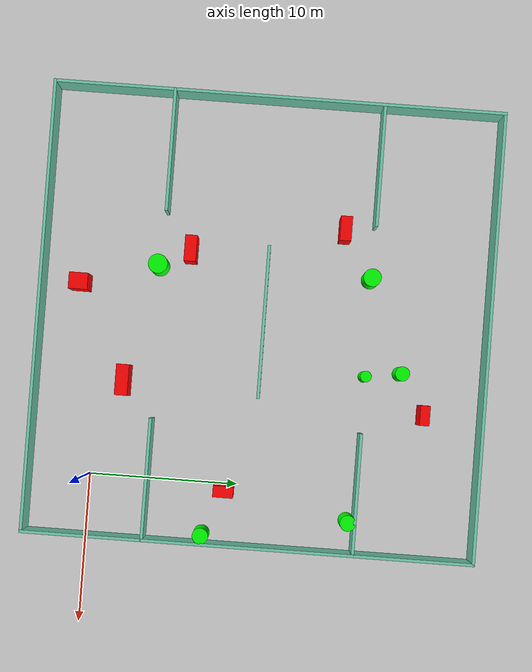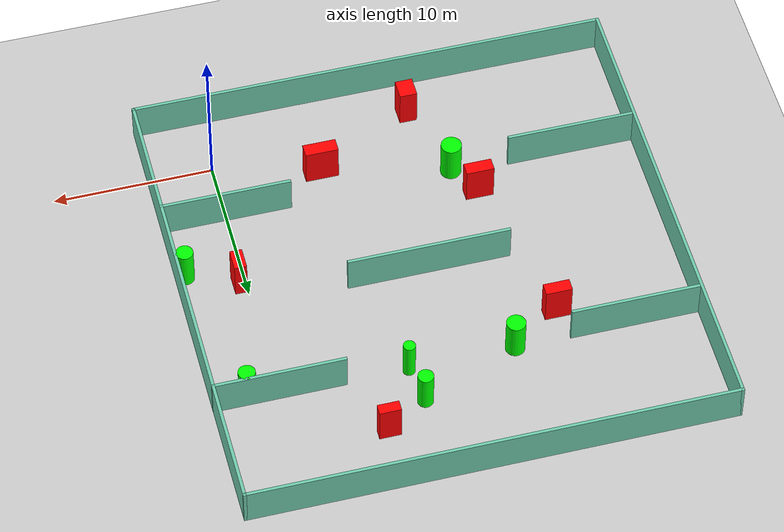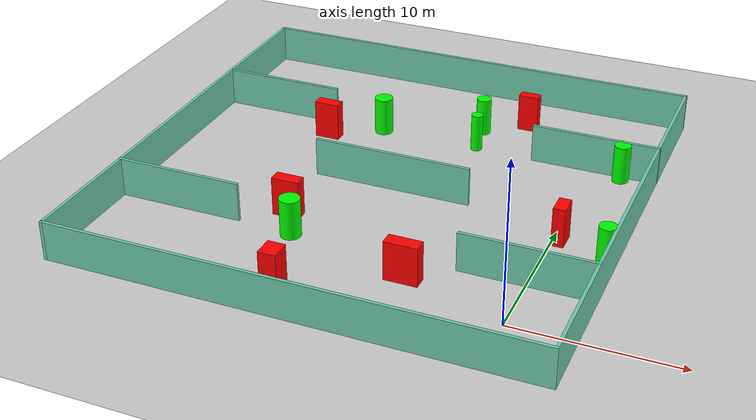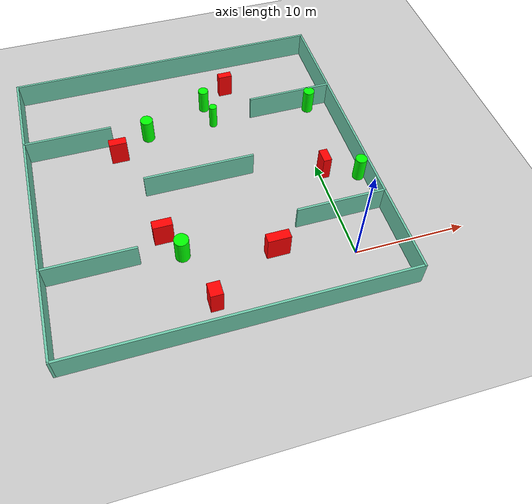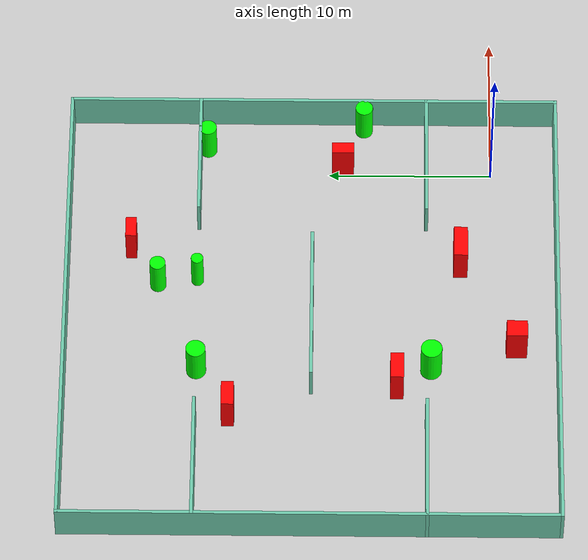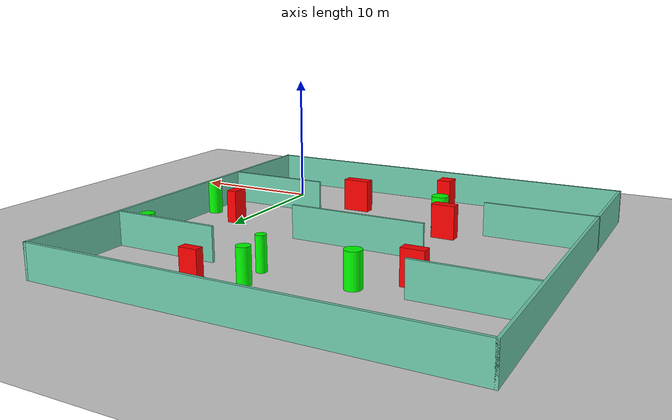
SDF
<sdf version="1.7">
 <world name="default">
  <light name="sun" type="directional">
   <pose>0 0 10 0 -0 0</pose>
   <diffuse>0.8 0.8 0.8 1</diffuse>
   <specular>0.2 0.2 0.2 1</specular>
   <attenuation>
    <range>1000</range>
    <constant>0.9</constant>
    <linear>0.01</linear>
    <quadratic>0.001</quadratic>
   </attenuation>
   <direction>-0.5 0.1 -0.9</direction>
   <spot><inner_angle>0</inner_angle><outer_angle>0</outer_angle><falloff>0</falloff></spot>
  </light>
  <model name="ground_plane">
   <static>1</static>
   <link name="link">
    <collision name="collision">
     <geometry><plane><normal>0 0 1</normal><size>100 100</size></plane></geometry>
     <surface>
      <contact><collide_bitmask>65535</collide_bitmask></contact>
      <friction><ode><mu>100</mu><mu2>50</mu2></ode></friction>
     </surface>
    </collision>
    <visual name="visual">
     <cast_shadows>0</cast_shadows>
     <geometry><plane><normal>0 0 1</normal><size>100 100</size></plane></geometry>
     <material>
      <script><uri>file://media/materials/scripts/gazebo.material</uri><name>Gazebo/Grey</name></script>
     </material>
    </visual>
   </link>
  </model>
  <gravity>0 0 -9.8</gravity>
  <magnetic_field>6e-06 2.3e-05 -4.2e-05</magnetic_field>
  <atmosphere type="adiabatic"/>
  <physics type="ode">
   <max_step_size>0.001</max_step_size>
   <real_time_factor>1</real_time_factor>
   <real_time_update_rate>1000</real_time_update_rate>
  </physics>
  <scene><ambient>0.4 0.4 0.4 1</ambient><background>0.7 0.7 0.7 1</background><shadows>1</shadows></scene>
  <spherical_coordinates>
   <surface_model>EARTH_WGS84</surface_model>
   <latitude_deg>0</latitude_deg>
   <longitude_deg>0</longitude_deg>
   <elevation>0</elevation>
   <heading_deg>0</heading_deg>
  </spherical_coordinates>
  <model name="my_base_walls">
   <link name="Wall_10">
    <collision name="Wall_10_Collision">
     <geometry><box><size>8.2 0.2 2.5</size></box></geometry>
     <pose>0 0 1.25 0 -0 0</pose>
    </collision>
    <visual name="Wall_10_Visual">
     <pose>0 0 1.25 0 -0 0</pose>
     <geometry><box><size>8.2 0.2 2.5</size></box></geometry>
     <material>
      <script><uri>file://media/materials/scripts/gazebo.material</uri><name>Gazebo/Grey</name></script>
      <ambient>0.435294 0.796078 0.67451 1</ambient>
     </material>
     <meta><layer>0</layer></meta>
    </visual>
    <pose>-11 -7 0 0 -0 0</pose>
   </link>
   <link name="Wall_12">
    <collision name="Wall_12_Collision">
     <geometry><box><size>8.2 0.2 2.5</size></box></geometry>
     <pose>0 0 1.25 0 -0 0</pose>
    </collision>
    <visual name="Wall_12_Visual">
     <pose>0 0 1.25 0 -0 0</pose>
     <geometry><box><size>8.2 0.2 2.5</size></box></geometry>
     <material>
      <script><uri>file://media/materials/scripts/gazebo.material</uri><name>Gazebo/Grey</name></script>
      <ambient>0.435294 0.796078 0.67451 1</ambient>
     </material>
     <meta><layer>0</layer></meta>
    </visual>
    <pose>-11 7 0 0 -0 0</pose>
   </link>
   <link name="Wall_14">
    <collision name="Wall_14_Collision">
     <geometry><box><size>8.2 0.2 2.5</size></box></geometry>
     <pose>0 0 1.25 0 -0 0</pose>
    </collision>
    <visual name="Wall_14_Visual">
     <pose>0 0 1.25 0 -0 0</pose>
     <geometry><box><size>8.2 0.2 2.5</size></box></geometry>
     <material>
      <script><uri>file://media/materials/scripts/gazebo.material</uri><name>Gazebo/Grey</name></script>
      <ambient>0.435294 0.796078 0.67451 1</ambient>
     </material>
     <meta><layer>0</layer></meta>
    </visual>
    <pose>11 7 0 0 -0 3.14159</pose>
   </link>
   <link name="Wall_16">
    <collision name="Wall_16_Collision">
     <geometry><box><size>10.2 0.2 2.5</size></box></geometry>
     <pose>0 0 1.25 0 -0 0</pose>
    </collision>
    <visual name="Wall_16_Visual">
     <pose>0 0 1.25 0 -0 0</pose>
     <geometry><box><size>10.2 0.2 2.5</size></box></geometry>
     <material>
      <script><uri>file://media/materials/scripts/gazebo.material</uri><name>Gazebo/Grey</name></script>
      <ambient>0.435294 0.796078 0.67451 1</ambient>
     </material>
     <meta><layer>0</layer></meta>
    </visual>
    <pose>0 0 0 0 -0 3.14159</pose>
   </link>
   <link name="Wall_2">
    <collision name="Wall_2_Collision">
     <geometry><box><size>30.2 0.2 2.5</size></box></geometry>
     <pose>0 0 1.25 0 -0 0</pose>
    </collision>
    <visual name="Wall_2_Visual">
     <pose>0 0 1.25 0 -0 0</pose>
     <geometry><box><size>30.2 0.2 2.5</size></box></geometry>
     <material>
      <script><uri>file://media/materials/scripts/gazebo.material</uri><name>Gazebo/Grey</name></script>
      <ambient>0.435294 0.796078 0.67451 1</ambient>
     </material>
     <meta><layer>0</layer></meta>
    </visual>
    <pose>0 -15 0 0 -0 3.14159</pose>
   </link>
   <link name="Wall_3">
    <collision name="Wall_3_Collision">
     <geometry><box><size>30.2 0.2 2.5</size></box></geometry>
     <pose>0 0 1.25 0 -0 0</pose>
    </collision>
    <visual name="Wall_3_Visual">
     <pose>0 0 1.25 0 -0 0</pose>
     <geometry><box><size>30.2 0.2 2.5</size></box></geometry>
     <material>
      <script><uri>file://media/materials/scripts/gazebo.material</uri><name>Gazebo/Grey</name></script>
      <ambient>0.435294 0.796078 0.67451 1</ambient>
     </material>
     <meta><layer>0</layer></meta>
    </visual>
    <pose>-15 0 0 0 -0 1.5708</pose>
   </link>
   <link name="Wall_4">
    <collision name="Wall_4_Collision">
     <geometry><box><size>30.2 0.2 2.5</size></box></geometry>
     <pose>0 0 1.25 0 -0 0</pose>
    </collision>
    <visual name="Wall_4_Visual">
     <pose>0 0 1.25 0 -0 0</pose>
     <geometry><box><size>30.2 0.2 2.5</size></box></geometry>
     <material>
      <script><uri>file://media/materials/scripts/gazebo.material</uri><name>Gazebo/Grey</name></script>
      <ambient>0.435294 0.796078 0.67451 1</ambient>
     </material>
     <meta><layer>0</layer></meta>
    </visual>
    <pose>0 15 0 0 -0 0</pose>
   </link>
   <link name="Wall_6">
    <collision name="Wall_6_Collision">
     <geometry><box><size>30.2 0.2 2.5</size></box></geometry>
     <pose>0 0 1.25 0 -0 0</pose>
    </collision>
    <visual name="Wall_6_Visual">
     <pose>0 0 1.25 0 -0 0</pose>
     <geometry><box><size>30.2 0.2 2.5</size></box></geometry>
     <material>
      <script><uri>file://media/materials/scripts/gazebo.material</uri><name>Gazebo/Grey</name></script>
      <ambient>0.435294 0.796078 0.67451 1</ambient>
     </material>
     <meta><layer>0</layer></meta>
    </visual>
    <pose>15 0 0 0 -0 1.5708</pose>
   </link>
   <link name="Wall_8">
    <collision name="Wall_8_Collision">
     <geometry><box><size>8.2 0.2 2.5</size></box></geometry>
     <pose>0 0 1.25 0 -0 0</pose>
    </collision>
    <visual name="Wall_8_Visual">
     <pose>0 0 1.25 0 -0 0</pose>
     <geometry><box><size>8.2 0.2 2.5</size></box></geometry>
     <material>
      <script><uri>file://media/materials/scripts/gazebo.material</uri><name>Gazebo/Grey</name></script>
      <ambient>0.435294 0.796078 0.67451 1</ambient>
     </material>
     <meta><layer>0</layer></meta>
    </visual>
    <pose>11 -7 0 0 -0 3.14159</pose>
   </link>
   <static>1</static>
   <pose>-11 11 0 0 -0 0</pose>
  </model>
  <model name="cylinder1">
   <static>1</static>
   <link name="link">
    <inertial>
     <mass>1</mass>
     <inertia><ixx>0.5</ixx><ixy>0</ixy><ixz>0</ixz><iyy>0.5</iyy><iyz>0</iyz><izz>1</izz></inertia>
    </inertial>
    <collision name="collision">
     <geometry><cylinder><radius>0.37408291283412853</radius><length>2.5</length></cylinder></geometry>
    </collision>
    <visual name="visual">
     <geometry><cylinder><radius>0.37408291283412853</radius><length>2.5</length></cylinder></geometry>
     <material>
      <ambient>0 1 0 1</ambient>
      <diffuse>0 1 0 1</diffuse>
      <specular>0.1 0.1 0.1 1</specular>
      <emissive>0 0 0 0</emissive>
     </material>
    </visual>
   </link>
   <pose>-7.899939719746328 18.01640958453787 1.25 0 0 0</pose>
  </model>
  <model name="cylinder2">
   <static>1</static>
   <link name="link">
    <inertial>
     <mass>1</mass>
     <inertia><ixx>0.5</ixx><ixy>0</ixy><ixz>0</ixz><iyy>0.5</iyy><iyz>0</iyz><izz>1</izz></inertia>
    </inertial>
    <collision name="collision">
     <geometry><cylinder><radius>0.6460000692825657</radius><length>2.5</length></cylinder></geometry>
    </collision>
    <visual name="visual">
     <geometry><cylinder><radius>0.6460000692825657</radius><length>2.5</length></cylinder></geometry>
     <material>
      <ambient>0 1 0 1</ambient>
      <diffuse>0 1 0 1</diffuse>
      <specular>0.1 0.1 0.1 1</specular>
      <emissive>0 0 0 0</emissive>
     </material>
    </visual>
   </link>
   <pose>-14.341770043509838 3.7195911974984597 1.25 0 0 0</pose>
  </model>
  <model name="cylinder3">
   <static>1</static>
   <link name="link">
    <inertial>
     <mass>1</mass>
     <inertia><ixx>0.5</ixx><ixy>0</ixy><ixz>0</ixz><iyy>0.5</iyy><iyz>0</iyz><izz>1</izz></inertia>
    </inertial>
    <collision name="collision">
     <geometry><cylinder><radius>0.4845284216015143</radius><length>2.5</length></cylinder></geometry>
    </collision>
    <visual name="visual">
     <geometry><cylinder><radius>0.4845284216015143</radius><length>2.5</length></cylinder></geometry>
     <material>
      <ambient>0 1 0 1</ambient>
      <diffuse>0 1 0 1</diffuse>
      <specular>0.1 0.1 0.1 1</specular>
      <emissive>0 0 0 0</emissive>
     </material>
    </visual>
   </link>
   <pose>-8.26231357576075 20.424377602559822 1.25 0 0 0</pose>
  </model>
  <model name="cylinder4">
   <static>1</static>
   <link name="link">
    <inertial>
     <mass>1</mass>
     <inertia><ixx>0.5</ixx><ixy>0</ixy><ixz>0</ixz><iyy>0.5</iyy><iyz>0</iyz><izz>1</izz></inertia>
    </inertial>
    <collision name="collision">
     <geometry><cylinder><radius>0.5968691050870052</radius><length>2.5</length></cylinder></geometry>
    </collision>
    <visual name="visual">
     <geometry><cylinder><radius>0.5968691050870052</radius><length>2.5</length></cylinder></geometry>
     <material>
      <ambient>0 1 0 1</ambient>
      <diffuse>0 1 0 1</diffuse>
      <specular>0.1 0.1 0.1 1</specular>
      <emissive>0 0 0 0</emissive>
     </material>
    </visual>
   </link>
   <pose>-14.472843876173265 17.971720460602445 1.25 0 0 0</pose>
  </model>
  <model name="cylinder5">
   <static>1</static>
   <link name="link">
    <inertial>
     <mass>1</mass>
     <inertia><ixx>0.5</ixx><ixy>0</ixy><ixz>0</ixz><iyy>0.5</iyy><iyz>0</iyz><izz>1</izz></inertia>
    </inertial>
    <collision name="collision">
     <geometry><cylinder><radius>0.5280265215619507</radius><length>2.5</length></cylinder></geometry>
    </collision>
    <visual name="visual">
     <geometry><cylinder><radius>0.5280265215619507</radius><length>2.5</length></cylinder></geometry>
     <material>
      <ambient>0 1 0 1</ambient>
      <diffuse>0 1 0 1</diffuse>
      <specular>0.1 0.1 0.1 1</specular>
      <emissive>0 0 0 0</emissive>
     </material>
    </visual>
   </link>
   <pose>1.868156333817243 17.534980000025648 1.25 0 0 0</pose>
  </model>
  <model name="cylinder6">
   <static>1</static>
   <link name="link">
    <inertial>
     <mass>1</mass>
     <inertia><ixx>0.5</ixx><ixy>0</ixy><ixz>0</ixz><iyy>0.5</iyy><iyz>0</iyz><izz>1</izz></inertia>
    </inertial>
    <collision name="collision">
     <geometry><cylinder><radius>0.5338236725279648</radius><length>2.5</length></cylinder></geometry>
    </collision>
    <visual name="visual">
     <geometry><cylinder><radius>0.5338236725279648</radius><length>2.5</length></cylinder></geometry>
     <material>
      <ambient>0 1 0 1</ambient>
      <diffuse>0 1 0 1</diffuse>
      <specular>0.1 0.1 0.1 1</specular>
      <emissive>0 0 0 0</emissive>
     </material>
    </visual>
   </link>
   <pose>3.4327540709682793 7.857857075741519 1.25 0 0 0</pose>
  </model>
  <model name="box1">
   <static>1</static>
   <link name="link">
    <inertial>
     <mass>1</mass>
     <inertia><ixx>0.083</ixx><ixy>0</ixy><ixz>0</ixz><iyy>0.083</iyy><iyz>0</iyz><izz>0.083</izz></inertia>
    </inertial>
    <collision name="collision">
     <geometry><box><size>1.6320701956705197 0.7699409494316902 2.5</size></box></geometry>
    </collision>
    <visual name="visual">
     <geometry><box><size>1.6320701956705197 0.7699409494316902 2.5</size></box></geometry>
     <material>
      <ambient>1 0 0 1</ambient>
      <diffuse>1 0 0 1</diffuse>
      <specular>0.1 0.1 0.1 1</specular>
      <emissive>0 0 0 0</emissive>
     </material>
    </visual>
    <sensor name="my_contact" type="contact">
     <contact><collision>box_collision</collision><topic>__default_topic__</topic></contact>
    </sensor>
   </link>
   <pose>-17.608389322210108 16.001230076420498 1.25 0 0 0</pose>
  </model>
  <model name="box2">
   <static>1</static>
   <link name="link">
    <inertial>
     <mass>1</mass>
     <inertia><ixx>0.083</ixx><ixy>0</ixy><ixz>0</ixz><iyy>0.083</iyy><iyz>0</iyz><izz>0.083</izz></inertia>
    </inertial>
    <collision name="collision">
     <geometry><box><size>1.7427784463357228 0.8034947948778772 2.5</size></box></geometry>
    </collision>
    <visual name="visual">
     <geometry><box><size>1.7427784463357228 0.8034947948778772 2.5</size></box></geometry>
     <material>
      <ambient>1 0 0 1</ambient>
      <diffuse>1 0 0 1</diffuse>
      <specular>0.1 0.1 0.1 1</specular>
      <emissive>0 0 0 0</emissive>
     </material>
    </visual>
    <sensor name="my_contact" type="contact">
     <contact><collision>box_collision</collision><topic>__default_topic__</topic></contact>
    </sensor>
   </link>
   <pose>-15.532533431475905 5.801983260463464 1.25 0 0 0</pose>
  </model>
  <model name="box3">
   <static>1</static>
   <link name="link">
    <inertial>
     <mass>1</mass>
     <inertia><ixx>0.083</ixx><ixy>0</ixy><ixz>0</ixz><iyy>0.083</iyy><iyz>0</iyz><izz>0.083</izz></inertia>
    </inertial>
    <collision name="collision">
     <geometry><box><size>0.762307815476199 1.345150776892337 2.5</size></box></geometry>
    </collision>
    <visual name="visual">
     <geometry><box><size>0.762307815476199 1.345150776892337 2.5</size></box></geometry>
     <material>
      <ambient>1 0 0 1</ambient>
      <diffuse>1 0 0 1</diffuse>
      <specular>0.1 0.1 0.1 1</specular>
      <emissive>0 0 0 0</emissive>
     </material>
    </visual>
    <sensor name="my_contact" type="contact">
     <contact><collision>box_collision</collision><topic>__default_topic__</topic></contact>
    </sensor>
   </link>
   <pose>0.4180293831876476 9.151807553326659 1.25 0 0 0</pose>
  </model>
  <model name="box4">
   <static>1</static>
   <link name="link">
    <inertial>
     <mass>1</mass>
     <inertia><ixx>0.083</ixx><ixy>0</ixy><ixz>0</ixz><iyy>0.083</iyy><iyz>0</iyz><izz>0.083</izz></inertia>
    </inertial>
    <collision name="collision">
     <geometry><box><size>1.3385169154478191 0.6566704618879393 2.5</size></box></geometry>
    </collision>
    <visual name="visual">
     <geometry><box><size>1.3385169154478191 0.6566704618879393 2.5</size></box></geometry>
     <material>
      <ambient>1 0 0 1</ambient>
      <diffuse>1 0 0 1</diffuse>
      <specular>0.1 0.1 0.1 1</specular>
      <emissive>0 0 0 0</emissive>
     </material>
    </visual>
    <sensor name="my_contact" type="contact">
     <contact><collision>box_collision</collision><topic>__default_topic__</topic></contact>
    </sensor>
   </link>
   <pose>-5.6052444022570835 22.107151062756365 1.25 0 0 0</pose>
  </model>
  <model name="box5">
   <static>1</static>
   <link name="link">
    <inertial>
     <mass>1</mass>
     <inertia><ixx>0.083</ixx><ixy>0</ixy><ixz>0</ixz><iyy>0.083</iyy><iyz>0</iyz><izz>0.083</izz></inertia>
    </inertial>
    <collision name="collision">
     <geometry><box><size>1.0917600571564805 1.2621379790479108 2.5</size></box></geometry>
    </collision>
    <visual name="visual">
     <geometry><box><size>1.0917600571564805 1.2621379790479108 2.5</size></box></geometry>
     <material>
      <ambient>1 0 0 1</ambient>
      <diffuse>1 0 0 1</diffuse>
      <specular>0.1 0.1 0.1 1</specular>
      <emissive>0 0 0 0</emissive>
     </material>
    </visual>
    <sensor name="my_contact" type="contact">
     <contact><collision>box_collision</collision><topic>__default_topic__</topic></contact>
    </sensor>
   </link>
   <pose>-12.820398237594894 -1.4678833577243275 1.25 0 0 0</pose>
  </model>
  <model name="box6">
   <static>1</static>
   <link name="link">
    <inertial>
     <mass>1</mass>
     <inertia><ixx>0.083</ixx><ixy>0</ixy><ixz>0</ixz><iyy>0.083</iyy><iyz>0</iyz><izz>0.083</izz></inertia>
    </inertial>
    <collision name="collision">
     <geometry><box><size>2.067912472046971 0.8520406588598116 2.5</size></box></geometry>
    </collision>
    <visual name="visual">
     <geometry><box><size>2.067912472046971 0.8520406588598116 2.5</size></box></geometry>
     <material>
      <ambient>1 0 0 1</ambient>
      <diffuse>1 0 0 1</diffuse>
      <specular>0.1 0.1 0.1 1</specular>
      <emissive>0 0 0 0</emissive>
     </material>
    </visual>
    <sensor name="my_contact" type="contact">
     <contact><collision>box_collision</collision><topic>__default_topic__</topic></contact>
    </sensor>
   </link>
   <pose>-6.487157803182132 1.91083817054803 1.25 0 0 0</pose>
  </model>
 </world>
</sdf>
